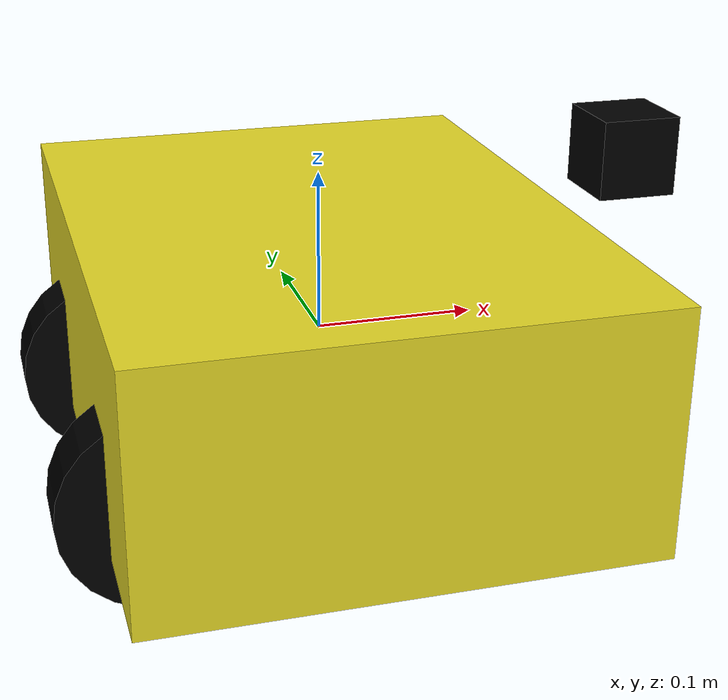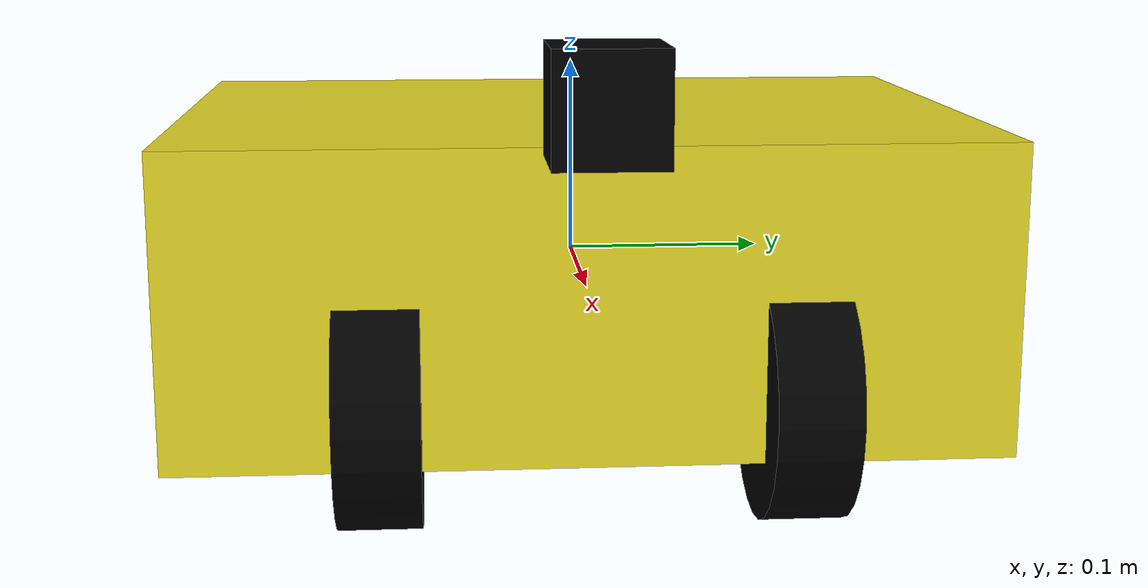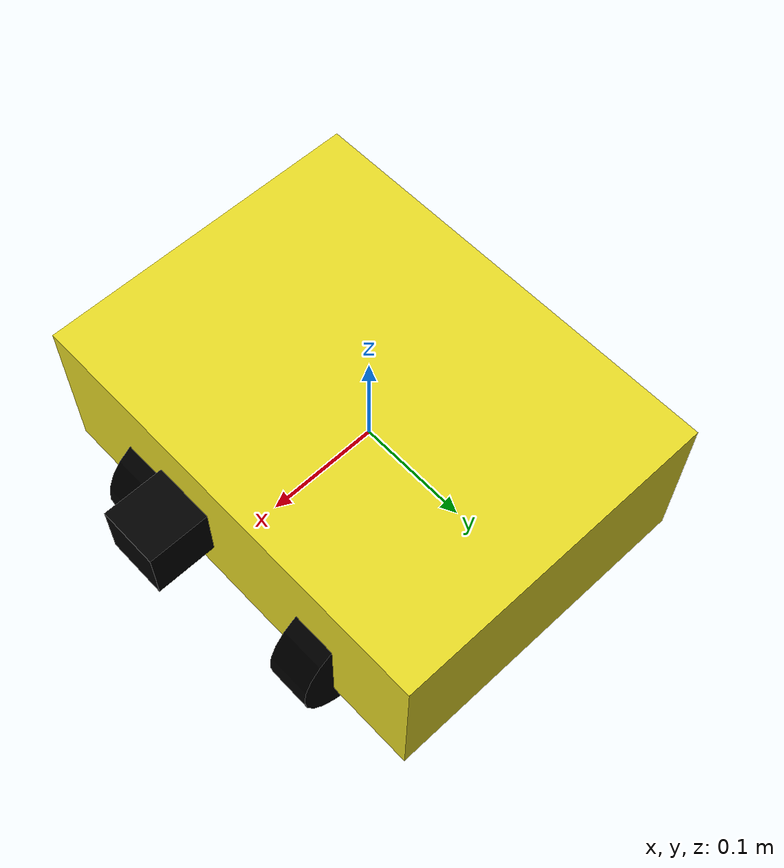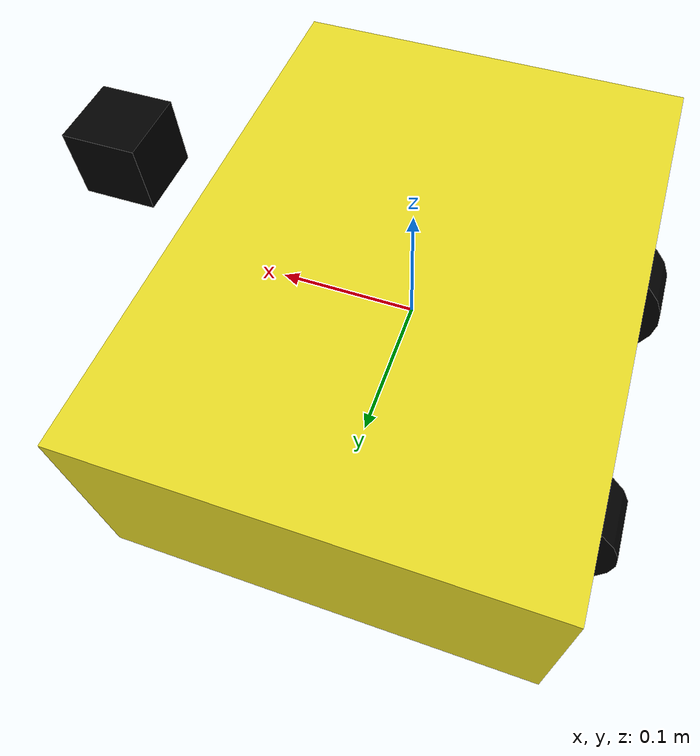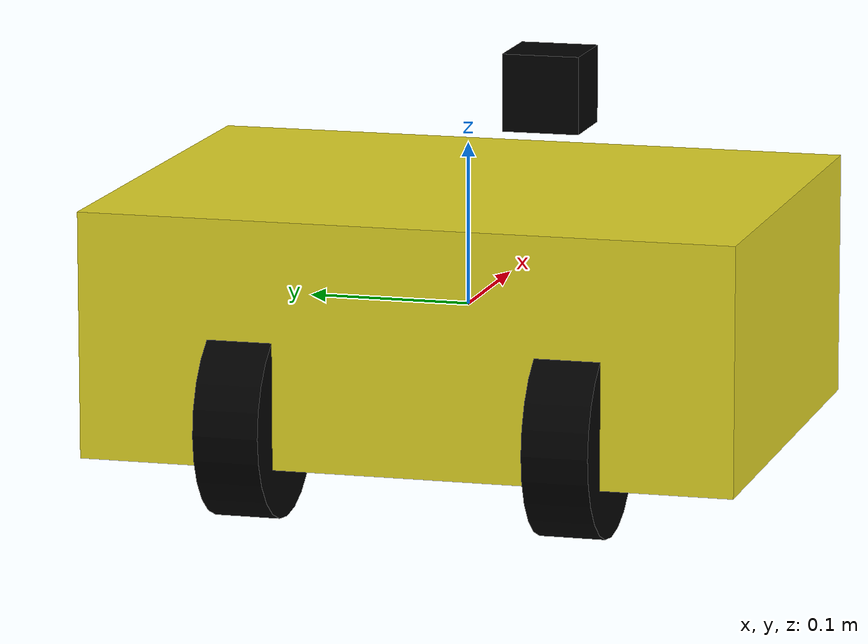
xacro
<?xml version="1.0" encoding="UTF-8"?>
<robot name="car" xmlns:xacro="http://www.ros.org/wiki/xacro">
    <xacro:include filename="$(find track)/urdf/common.xacro" />

    <xacro:arg name="robot_type" default="track_car"/>

    <!-- Materials -->
    <material name="yellow">
        <color rgba="1 1 0 1"/>
    </material>
    <material name="green">
        <color rgba="0 1 0 1"/>
    </material>
    <material name="black">
        <color rgba="0 0 0 1"/>
    </material>

    <!-- Add virtual root link -->
    <link name="virtual_root"/>

    <joint name="virtual_joint" type="fixed">
        <parent link="virtual_root"/>
        <child link="base_link"/>
        <origin xyz="0 0 0" rpy="0 0 0"/>
    </joint>

    <!-- Base parameters -->
    <xacro:property name="base_radius" value="0.20"/>
    <xacro:property name="base_length" value="0.30"/>
    <xacro:property name="base_height" value="0.15"/>

    <!-- Wheel parameters -->
    <xacro:property name="wheel_radius" value="0.06"/>
    <xacro:property name="wheel_width" value="0.04"/>
    <xacro:property name="wheel_ygap" value="0.20"/>
    <xacro:property name="wheel_zoff" value="0.05"/>
    <xacro:property name="wheel_xoff" value="0.12"/>

    <!-- Main body link -->
    <link name="base_link">
        <inertial>
            <mass value="1.0"/>
            <origin xyz="0 0 0" rpy="0 0 0"/>
            <inertia ixx="0.0395" ixy="0" ixz="0" iyy="0.086" iyz="0" izz="0.0125"/>
        </inertial>
        <visual>
            <geometry>
                <box size="${base_length} ${base_radius*2} ${base_height}"/>
            </geometry>
            <material name="yellow" if="$(eval robot_type == 'track_car')"/>
            <material name="green" if="$(eval robot_type == 'target_car')"/>
        </visual>
        <collision>
            <geometry>
                <box size="${base_length} ${base_radius*2} ${base_height}"/>
            </geometry>
        </collision>
    </link>

    <!-- Wheel macro -->
    <xacro:macro name="wheel" params="prefix x_reflect y_reflect">
        <joint name="${prefix}_wheel_joint" type="continuous">
            <parent link="base_link"/>
            <child link="${prefix}_wheel"/>
            <origin xyz="${wheel_xoff * x_reflect} ${wheel_ygap/2 * y_reflect} ${-wheel_zoff}" rpy="0 0 0"/>
            <axis xyz="0 1 0"/>
        </joint>

        <link name="${prefix}_wheel">
            <visual>
                <geometry>
                    <cylinder radius="${wheel_radius}" length="${wheel_width}"/>
                </geometry>
                <material name="black"/>
                <origin xyz="0 0 0" rpy="${pi/2} 0 0"/>
            </visual>
            <collision>
                <geometry>
                    <cylinder radius="${wheel_radius}" length="${wheel_width}"/>
                </geometry>
                <origin xyz="0 0 0" rpy="${pi/2} 0 0"/>
            </collision>
            <xacro:default_inertial mass="1"/>
        </link>
    </xacro:macro>

    <!-- Add four wheels -->
    <xacro:wheel prefix="front_right" x_reflect="1" y_reflect="-1" />
    <xacro:wheel prefix="front_left" x_reflect="1" y_reflect="1" />
    <xacro:wheel prefix="rear_right" x_reflect="-1" y_reflect="-1" />
    <xacro:wheel prefix="rear_left" x_reflect="-1" y_reflect="1" />

    <!-- Camera link and joint -->
    <link name="camera_link">
        <visual>
            <geometry>
                <box size="0.05 0.05 0.05"/>
            </geometry>
            <material name="black"/>
        </visual>
    </link>

    <joint name="camera_joint" type="fixed">
        <parent link="base_link"/>
        <child link="camera_link"/>
        <origin xyz="0.2 0 0.1" rpy="0 0 0"/>
    </joint>

    <!-- Gazebo plugins -->
    <gazebo reference="camera_link">
        <sensor type="depth" name="camera">
            <update_rate>30.0</update_rate>
            <camera name="head">
                <horizontal_fov>1.3962634</horizontal_fov>
                <image>
                    <width>640</width>
                    <height>480</height>
                    <format>R8G8B8</format>
                </image>
                <clip>
                    <near>0.02</near>
                    <far>300</far>
                </clip>
                <noise>
                    <type>gaussian</type>
                    <mean>0.0</mean>
                    <stddev>0.007</stddev>
                </noise>
            </camera>
            <plugin name="kinect_camera_controller" filename="libgazebo_ros_openni_kinect.so">
                <baseline>0.2</baseline>
                <alwaysOn>true</alwaysOn>
                <updateRate>30.0</updateRate>
                <cameraName>camera</cameraName>
                <imageTopicName>image_raw</imageTopicName>
                <cameraInfoTopicName>camera_info</cameraInfoTopicName>
                <depthImageTopicName>depth/image_raw</depthImageTopicName>
                <depthImageInfoTopicName>depth/camera_info</depthImageInfoTopicName>
                <pointCloudTopicName>depth/points</pointCloudTopicName>
                <frameName>camera_link</frameName>
                <pointCloudCutoff>0.5</pointCloudCutoff>
                <pointCloudCutoffMax>3.0</pointCloudCutoffMax>
                <distortionK1>0.00000001</distortionK1>
                <distortionK2>0.00000001</distortionK2>
                <distortionK3>0.00000001</distortionK3>
                <distortionT1>0.00000001</distortionT1>
                <distortionT2>0.00000001</distortionT2>
            </plugin>
        </sensor>
        <material>Gazebo/Black</material>
    </gazebo>

    <!-- Modify differential drive plugin configuration -->
    <gazebo>
        <plugin name="differential_drive_controller" filename="libgazebo_ros_diff_drive.so">
            <leftJoint>front_left_wheel_joint</leftJoint>
            <rightJoint>front_right_wheel_joint</rightJoint>
            <robotNamespace>$(arg robot_type)</robotNamespace>
            <wheelSeparation>0.3</wheelSeparation>
            <wheelDiameter>0.12</wheelDiameter>
            <commandTopic>cmd_vel</commandTopic>
            <odometryTopic>odom</odometryTopic>
            <odometryFrame>odom</odometryFrame>
            <robotBaseFrame>base_link</robotBaseFrame>
            <publishWheelTF>false</publishWheelTF>
            <publishOdomTF>true</publishOdomTF>
            <publishWheelJointState>false</publishWheelJointState>
            <wheelAcceleration>1.0</wheelAcceleration>
            <wheelTorque>20</wheelTorque>
            <odometrySource>world</odometrySource>
            <updateRate>30</updateRate>
        </plugin>
    </gazebo>

    <!-- Gazebo Materials -->
    <gazebo reference="base_link">
        <material>Gazebo/Yellow</material>
        <plugin name="base_controller" filename="libgazebo_ros_control.so">
            <robotNamespace>$(arg robot_type)</robotNamespace>
        </plugin>
    </gazebo>

    <!-- Add color for wheels -->
    <gazebo reference="front_right_wheel">
        <material>Gazebo/Black</material>
    </gazebo>
    <gazebo reference="front_left_wheel">
        <material>Gazebo/Black</material>
    </gazebo>
    <gazebo reference="rear_right_wheel">
        <material>Gazebo/Black</material>
    </gazebo>
    <gazebo reference="rear_left_wheel">
        <material>Gazebo/Black</material>
    </gazebo>

    <!-- Conditional material for base_link based on robot type -->
    <gazebo reference="base_link">
        <xacro:if value="$(eval robot_type == 'track_car')">
            <material>Gazebo/Yellow</material>
        </xacro:if>
        <xacro:if value="$(eval robot_type == 'target_car')">
            <material>Gazebo/Green</material>
        </xacro:if>
    </gazebo>
</robot>

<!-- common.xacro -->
<robot xmlns:xacro="http://www.ros.org/wiki/xacro">
    <!-- Constants -->
    <!-- pi is already defined in xacro, no need to redefine -->

    <!-- Default inertial macro -->
    <xacro:macro name="default_inertial" params="mass">
        <inertial>
            <mass value="${mass}"/>
            <origin xyz="0 0 0" rpy="0 0 0"/>
            <inertia
                ixx="${mass * 0.0833333}" ixy="0.0" ixz="0.0"
                iyy="${mass * 0.0833333}" iyz="0.0"
                izz="${mass * 0.0833333}"/>
        </inertial>
    </xacro:macro>

    <!-- Materials -->
    <material name="white">
        <color rgba="1 1 1 1"/>
    </material>
</robot>
